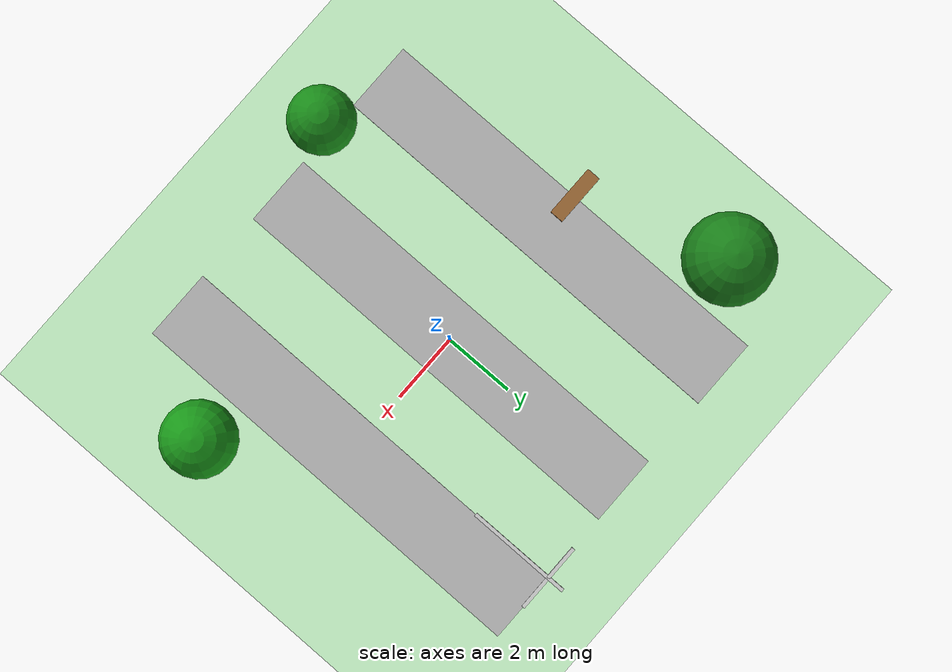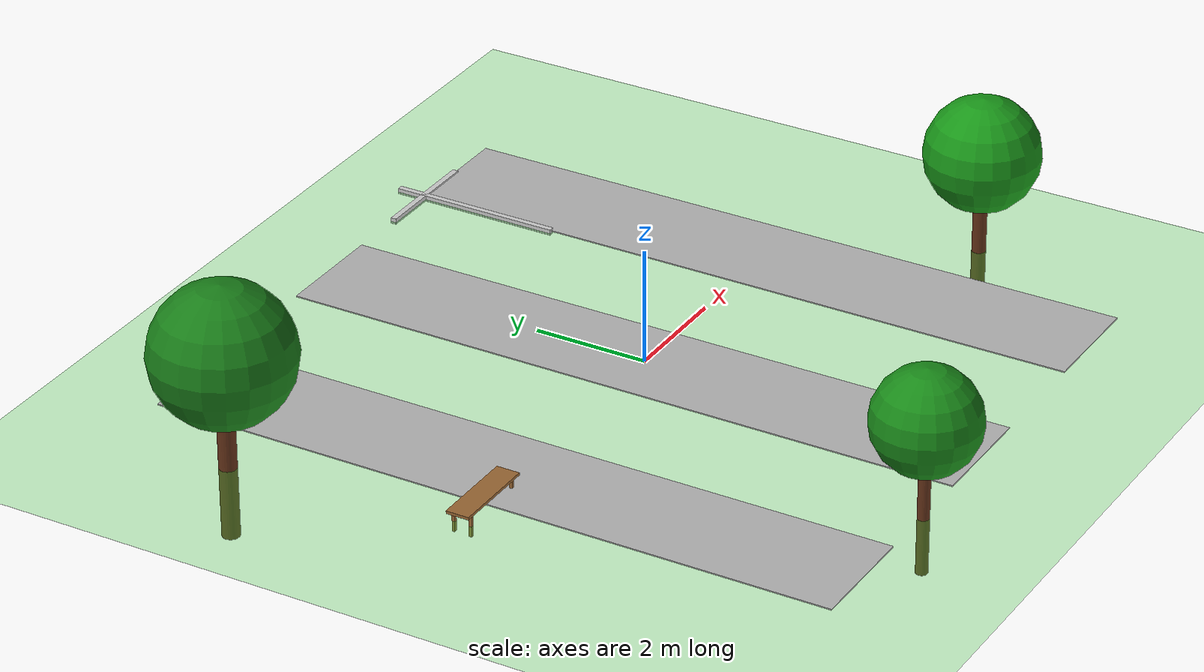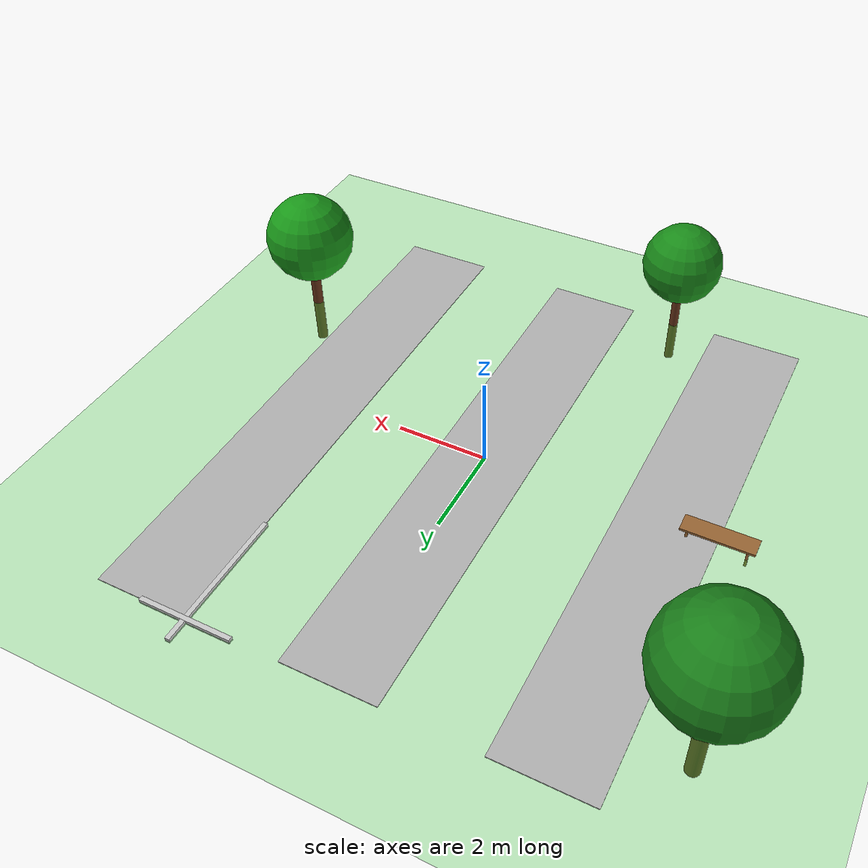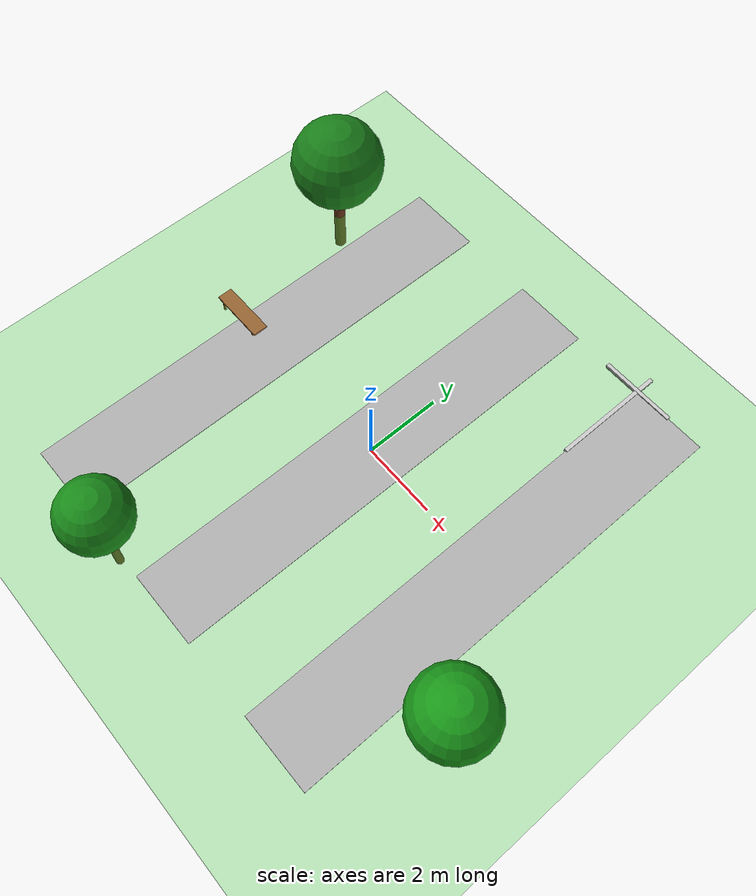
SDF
<?xml version="1.0" ?>
<sdf version="1.7">
  <world name="outdoor_park">
    <!-- Include standard models -->
    <include>
      <uri>model://ground_plane</uri>
    </include>

    <include>
      <uri>model://sun</uri>
    </include>

    <!-- Add sky -->
    <scene>
      <sky type="panorama"/>
    </scene>

    <!-- Physics engine -->
    <physics name="default_physics" type="ode">
      <max_step_size>0.001</max_step_size>
      <real_time_factor>1.0</real_time_factor>
      <real_time_update_rate>1000.0</real_time_update_rate>
    </physics>

    <!-- Terrain features -->
    <model name="grass_area">
      <pose>0 0 0 0 0 0</pose>
      <static>1</static>
      <link name="grass_link">
        <collision name="collision">
          <geometry>
            <plane>
              <normal>0 0 1</normal>
              <size>20 20</size>
            </plane>
          </geometry>
        </collision>
        <visual name="visual">
          <geometry>
            <plane>
              <normal>0 0 1</normal>
              <size>20 20</size>
            </plane>
          </geometry>
          <material>
            <ambient>0.2 0.8 0.2 1</ambient>
            <diffuse>0.2 0.8 0.2 1</diffuse>
          </material>
        </visual>
      </link>
    </model>

    <!-- Walking paths -->
    <model name="walkway_center">
      <pose>0 0 0.01 0 0 0</pose>
      <static>1</static>
      <link name="path_link">
        <collision name="collision">
          <geometry>
            <box>
              <size>2 12 0.02</size>
            </box>
          </geometry>
        </collision>
        <visual name="visual">
          <geometry>
            <box>
              <size>2 12 0.02</size>
            </box>
          </geometry>
          <material>
            <ambient>0.7 0.7 0.7 1</ambient>
            <diffuse>0.7 0.7 0.7 1</diffuse>
          </material>
        </visual>
      </link>
    </model>

    <model name="walkway_left">
      <pose>-4 0 0.01 0 0 0</pose>
      <static>1</static>
      <link name="path_link">
        <collision name="collision">
          <geometry>
            <box>
              <size>2 12 0.02</size>
            </box>
          </geometry>
        </collision>
        <visual name="visual">
          <geometry>
            <box>
              <size>2 12 0.02</size>
            </box>
          </geometry>
          <material>
            <ambient>0.7 0.7 0.7 1</ambient>
            <diffuse>0.7 0.7 0.7 1</diffuse>
          </material>
        </visual>
      </link>
    </model>

    <model name="walkway_right">
      <pose>4 0 0.01 0 0 0</pose>
      <static>1</static>
      <link name="path_link">
        <collision name="collision">
          <geometry>
            <box>
              <size>2 12 0.02</size>
            </box>
          </geometry>
        </collision>
        <visual name="visual">
          <geometry>
            <box>
              <size>2 12 0.02</size>
            </box>
          </geometry>
          <material>
            <ambient>0.7 0.7 0.7 1</ambient>
            <diffuse>0.7 0.7 0.7 1</diffuse>
          </material>
        </visual>
      </link>
    </model>

    <!-- Trees -->
    <model name="tree_1">
      <pose>-6 4 0 0 0 0</pose>
      <link name="trunk">
        <collision name="collision">
          <geometry>
            <cylinder>
              <radius>0.15</radius>
              <length>2.5</length>
            </cylinder>
          </geometry>
        </collision>
        <visual name="visual">
          <geometry>
            <cylinder>
              <radius>0.15</radius>
              <length>2.5</length>
            </cylinder>
          </geometry>
          <material>
            <ambient>0.4 0.2 0.1 1</ambient>
            <diffuse>0.4 0.2 0.1 1</diffuse>
          </material>
        </visual>
        <inertial>
          <mass>10.0</mass>
          <inertia>
            <ixx>0.5</ixx>
            <ixy>0.0</ixy>
            <ixz>0.0</ixz>
            <iyy>0.5</iyy>
            <iyz>0.0</iyz>
            <izz>0.2</izz>
          </inertia>
        </inertial>
      </link>
      <link name="leaves">
        <pose>0 0 2.0 0 0 0</pose>
        <collision name="collision">
          <geometry>
            <sphere>
              <radius>1.2</radius>
            </sphere>
          </geometry>
        </collision>
        <visual name="visual">
          <geometry>
            <sphere>
              <radius>1.2</radius>
            </sphere>
          </geometry>
          <material>
            <ambient>0.1 0.5 0.1 1</ambient>
            <diffuse>0.1 0.5 0.1 1</diffuse>
          </material>
        </visual>
        <inertial>
          <mass>5.0</mass>
          <inertia>
            <ixx>1.0</ixx>
            <ixy>0.0</ixy>
            <ixz>0.0</ixz>
            <iyy>1.0</iyy>
            <iyz>0.0</iyz>
            <izz>1.0</izz>
          </inertia>
        </inertial>
      </link>
      <joint name="trunk_to_leaves" type="fixed">
        <parent>trunk</parent>
        <child>leaves</child>
        <pose>0 0 1.25 0 0 0</pose>
      </joint>
    </model>

    <model name="tree_2">
      <pose>6 -3 0 0 0 0</pose>
      <link name="trunk">
        <collision name="collision">
          <geometry>
            <cylinder>
              <radius>0.12</radius>
              <length>2.2</length>
            </cylinder>
          </geometry>
        </collision>
        <visual name="visual">
          <geometry>
            <cylinder>
              <radius>0.12</radius>
              <length>2.2</length>
            </cylinder>
          </geometry>
          <material>
            <ambient>0.4 0.2 0.1 1</ambient>
            <diffuse>0.4 0.2 0.1 1</diffuse>
          </material>
        </visual>
        <inertial>
          <mass>8.0</mass>
          <inertia>
            <ixx>0.4</ixx>
            <ixy>0.0</ixy>
            <ixz>0.0</ixz>
            <iyy>0.4</iyy>
            <iyz>0.0</iyz>
            <izz>0.15</izz>
          </inertia>
        </inertial>
      </link>
      <link name="leaves">
        <pose>0 0 1.8 0 0 0</pose>
        <collision name="collision">
          <geometry>
            <sphere>
              <radius>1.0</radius>
            </sphere>
          </geometry>
        </collision>
        <visual name="visual">
          <geometry>
            <sphere>
              <radius>1.0</radius>
            </sphere>
          </geometry>
          <material>
            <ambient>0.1 0.6 0.1 1</ambient>
            <diffuse>0.1 0.6 0.1 1</diffuse>
          </material>
        </visual>
        <inertial>
          <mass>4.0</mass>
          <inertia>
            <ixx>0.8</ixx>
            <ixy>0.0</ixy>
            <ixz>0.0</ixz>
            <iyy>0.8</iyy>
            <iyz>0.0</iyz>
            <izz>0.8</izz>
          </inertia>
        </inertial>
      </link>
      <joint name="trunk_to_leaves" type="fixed">
        <parent>trunk</parent>
        <child>leaves</child>
        <pose>0 0 1.1 0 0 0</pose>
      </joint>
    </model>

    <model name="tree_3">
      <pose>-2 -6 0 0 0 0</pose>
      <link name="trunk">
        <collision name="collision">
          <geometry>
            <cylinder>
              <radius>0.1</radius>
              <length>2.0</length>
            </cylinder>
          </geometry>
        </collision>
        <visual name="visual">
          <geometry>
            <cylinder>
              <radius>0.1</radius>
              <length>2.0</length>
            </cylinder>
          </geometry>
          <material>
            <ambient>0.4 0.2 0.1 1</ambient>
            <diffuse>0.4 0.2 0.1 1</diffuse>
          </material>
        </visual>
        <inertial>
          <mass>6.0</mass>
          <inertia>
            <ixx>0.3</ixx>
            <ixy>0.0</ixy>
            <ixz>0.0</ixz>
            <iyy>0.3</iyy>
            <iyz>0.0</iyz>
            <izz>0.1</izz>
          </inertia>
        </inertial>
      </link>
      <link name="leaves">
        <pose>0 0 1.7 0 0 0</pose>
        <collision name="collision">
          <geometry>
            <sphere>
              <radius>0.9</radius>
            </sphere>
          </geometry>
        </collision>
        <visual name="visual">
          <geometry>
            <sphere>
              <radius>0.9</radius>
            </sphere>
          </geometry>
          <material>
            <ambient>0.1 0.55 0.1 1</ambient>
            <diffuse>0.1 0.55 0.1 1</diffuse>
          </material>
        </visual>
        <inertial>
          <mass>3.5</mass>
          <inertia>
            <ixx>0.6</ixx>
            <ixy>0.0</ixy>
            <ixz>0.0</ixz>
            <iyy>0.6</iyy>
            <iyz>0.0</iyz>
            <izz>0.6</izz>
          </inertia>
        </inertial>
      </link>
      <joint name="trunk_to_leaves" type="fixed">
        <parent>trunk</parent>
        <child>leaves</child>
        <pose>0 0 1.0 0 0 0</pose>
      </joint>
    </model>

    <!-- Benches -->
    <model name="bench_1">
      <pose>-5 0 0.2 0 0 0</pose>
      <link name="seat">
        <collision name="collision">
          <geometry>
            <box>
              <size>1.5 0.4 0.05</size>
            </box>
          </geometry>
        </collision>
        <visual name="visual">
          <geometry>
            <box>
              <size>1.5 0.4 0.05</size>
            </box>
          </geometry>
          <material>
            <ambient>0.6 0.4 0.2 1</ambient>
            <diffuse>0.6 0.4 0.2 1</diffuse>
          </material>
        </visual>
        <inertial>
          <mass>8.0</mass>
          <inertia>
            <ixx>0.5</ixx>
            <ixy>0.0</ixy>
            <ixz>0.0</ixz>
            <iyy>1.5</iyy>
            <iyz>0.0</iyz>
            <izz>1.8</izz>
          </inertia>
        </inertial>
      </link>
      <link name="leg1">
        <pose>0.6 0.15 -0.2 0 0 0</pose>
        <collision name="collision">
          <geometry>
            <box>
              <size>0.05 0.05 0.4</size>
            </box>
          </geometry>
        </collision>
        <visual name="visual">
          <geometry>
            <box>
              <size>0.05 0.05 0.4</size>
            </box>
          </geometry>
          <material>
            <ambient>0.6 0.4 0.2 1</ambient>
            <diffuse>0.6 0.4 0.2 1</diffuse>
          </material>
        </visual>
        <inertial>
          <mass>1.0</mass>
          <inertia>
            <ixx>0.01</ixx>
            <ixy>0.0</ixy>
            <ixz>0.0</ixz>
            <iyy>0.01</iyy>
            <iyz>0.0</iyz>
            <izz>0.001</izz>
          </inertia>
        </inertial>
      </link>
      <link name="leg2">
        <pose>0.6 -0.15 -0.2 0 0 0</pose>
        <collision name="collision">
          <geometry>
            <box>
              <size>0.05 0.05 0.4</size>
            </box>
          </geometry>
        </collision>
        <visual name="visual">
          <geometry>
            <box>
              <size>0.05 0.05 0.4</size>
            </box>
          </geometry>
          <material>
            <ambient>0.6 0.4 0.2 1</ambient>
            <diffuse>0.6 0.4 0.2 1</diffuse>
          </material>
        </visual>
        <inertial>
          <mass>1.0</mass>
          <inertia>
            <ixx>0.01</ixx>
            <ixy>0.0</ixy>
            <ixz>0.0</ixz>
            <iyy>0.01</iyy>
            <iyz>0.0</iyz>
            <izz>0.001</izz>
          </inertia>
        </inertial>
      </link>
      <link name="leg3">
        <pose>-0.6 0.15 -0.2 0 0 0</pose>
        <collision name="collision">
          <geometry>
            <box>
              <size>0.05 0.05 0.4</size>
            </box>
          </geometry>
        </collision>
        <visual name="visual">
          <geometry>
            <box>
              <size>0.05 0.05 0.4</size>
            </box>
          </geometry>
          <material>
            <ambient>0.6 0.4 0.2 1</ambient>
            <diffuse>0.6 0.4 0.2 1</diffuse>
          </material>
        </visual>
        <inertial>
          <mass>1.0</mass>
          <inertia>
            <ixx>0.01</ixx>
            <ixy>0.0</ixy>
            <ixz>0.0</ixz>
            <iyy>0.01</iyy>
            <iyz>0.0</iyz>
            <izz>0.001</izz>
          </inertia>
        </inertial>
      </link>
      <link name="leg4">
        <pose>-0.6 -0.15 -0.2 0 0 0</pose>
        <collision name="collision">
          <geometry>
            <box>
              <size>0.05 0.05 0.4</size>
            </box>
          </geometry>
        </collision>
        <visual name="visual">
          <geometry>
            <box>
              <size>0.05 0.05 0.4</size>
            </box>
          </geometry>
          <material>
            <ambient>0.6 0.4 0.2 1</ambient>
            <diffuse>0.6 0.4 0.2 1</diffuse>
          </material>
        </visual>
        <inertial>
          <mass>1.0</mass>
          <inertia>
            <ixx>0.01</ixx>
            <ixy>0.0</ixy>
            <ixz>0.0</ixz>
            <iyy>0.01</iyy>
            <iyz>0.0</iyz>
            <izz>0.001</izz>
          </inertia>
        </inertial>
      </link>
      <joint name="seat_to_leg1" type="fixed">
        <parent>seat</parent>
        <child>leg1</child>
        <pose>0.6 0.15 -0.25 0 0 0</pose>
      </joint>
      <joint name="seat_to_leg2" type="fixed">
        <parent>seat</parent>
        <child>leg2</child>
        <pose>0.6 -0.15 -0.25 0 0 0</pose>
      </joint>
      <joint name="seat_to_leg3" type="fixed">
        <parent>seat</parent>
        <child>leg3</child>
        <pose>-0.6 0.15 -0.25 0 0 0</pose>
      </joint>
      <joint name="seat_to_leg4" type="fixed">
        <parent>seat</parent>
        <child>leg4</child>
        <pose>-0.6 -0.15 -0.25 0 0 0</pose>
      </joint>
    </model>

    <!-- Playground equipment -->
    <model name="playground_swing">
      <pose>3 5 0 0 0 0</pose>
      <link name="support_beam">
        <collision name="collision">
          <geometry>
            <box>
              <size>0.1 3.0 0.1</size>
            </box>
          </geometry>
        </collision>
        <visual name="visual">
          <geometry>
            <box>
              <size>0.1 3.0 0.1</size>
            </box>
          </geometry>
          <material>
            <ambient>0.8 0.8 0.8 1</ambient>
            <diffuse>0.8 0.8 0.8 1</diffuse>
          </material>
        </visual>
        <inertial>
          <mass>15.0</mass>
          <inertia>
            <ixx>10.0</ixx>
            <ixy>0.0</ixy>
            <ixz>0.0</ixz>
            <iyy>0.1</iyy>
            <iyz>0.0</iyz>
            <izz>10.0</izz>
          </inertia>
        </inertial>
      </link>
      <link name="cross_bar">
        <pose>0 1.0 0 0 0 0</pose>
        <collision name="collision">
          <geometry>
            <box>
              <size>2.0 0.1 0.1</size>
            </box>
          </geometry>
        </collision>
        <visual name="visual">
          <geometry>
            <box>
              <size>2.0 0.1 0.1</size>
            </box>
          </geometry>
          <material>
            <ambient>0.8 0.8 0.8 1</ambient>
            <diffuse>0.8 0.8 0.8 1</diffuse>
          </material>
        </visual>
        <inertial>
          <mass>5.0</mass>
          <inertia>
            <ixx>1.7</ixx>
            <ixy>0.0</ixy>
            <ixz>0.0</ixz>
            <iyy>0.05</iyy>
            <iyz>0.0</iyz>
            <izz>1.7</izz>
          </inertia>
        </inertial>
      </link>
      <joint name="beam_to_cross" type="fixed">
        <parent>support_beam</parent>
        <child>cross_bar</child>
        <pose>0 1.0 0 0 0 0</pose>
      </joint>
    </model>

  </world>
</sdf>
